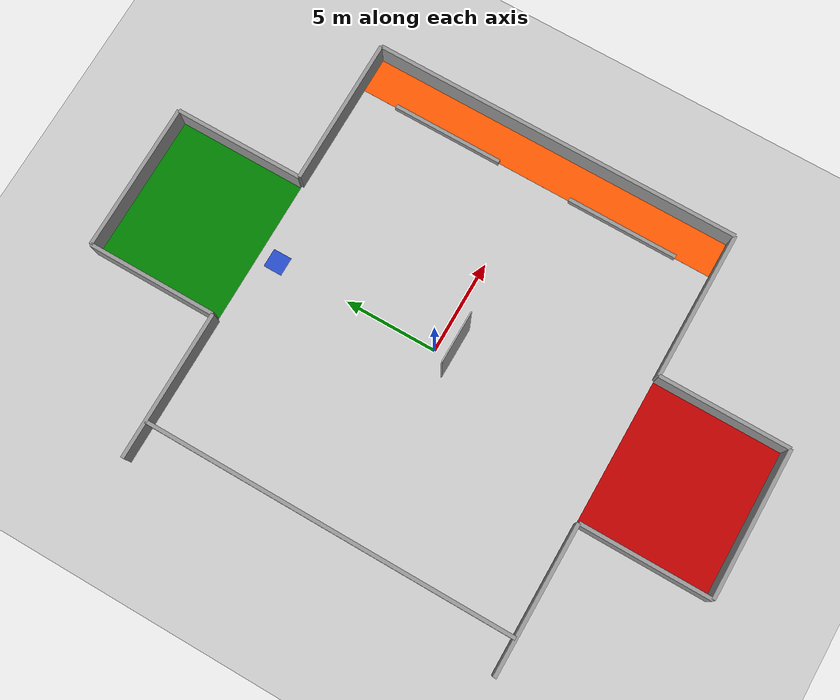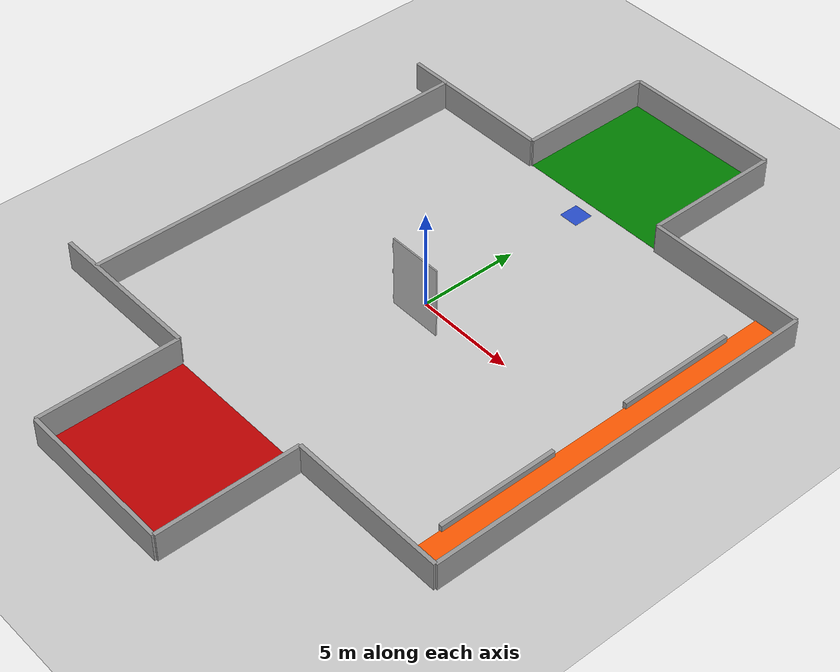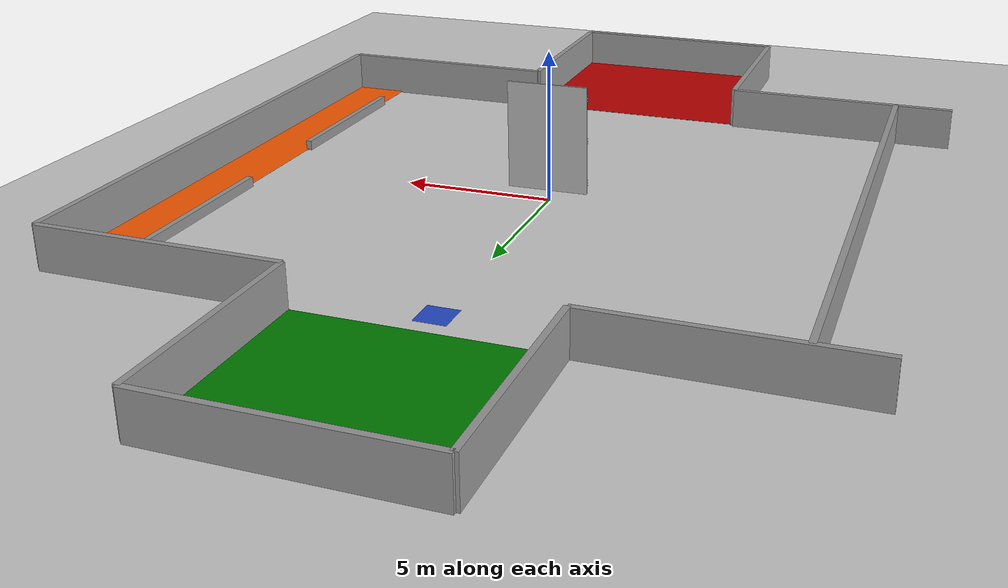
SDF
<?xml version="1.0" ?>
<sdf version="1.4">
  <world name="default">
    <!-- World Camera Settings-->
  <gui>
    <camera name="user_camera">
        <pose frame=''>24.1194 -0.328974 17.8913 0 0.683643 3.13619</pose>
	      <view_controller>orbit</view_controller>
        <projection_type>perspective</projection_type>
    </camera>
  </gui>
    <!--A global light source -->
    <include>
      <uri>model://sun</uri>
      <cast_shadows>0</cast_shadows>
    </include>
    <!-- A ground plane -->
    <include>
      <uri>model://ground_plane</uri>
    </include>
    <!-- Warehouse pallets -->

  <!-- Temporarily delivered pallet -->

    <!-- Our Robot model -->

    <!-- Walls that surround the warehouse -->
      <include>
        <uri>model://warehouse_walls</uri>
      </include>

    <model name='hinged_door'>
      <link name='door'>
        <inertial>
          <mass>41.3256</mass>
          <pose>0 -0.06858 0 0 -0 0</pose>
          <inertia>
            <ixx>14.2053</ixx>
            <ixy>0.0004</ixy>
            <ixz>0</ixz>
            <iyy>17.1997</iyy>
            <iyz>0</iyz>
            <izz>3.0298</izz>
          </inertia>
        </inertial>
        <collision name='collision'>
          <pose>0 -0.06858 0 0 -0 0</pose>
         <geometry>
            <mesh>
              <uri>model://hinged_door/meshes/door.dae</uri>
              <scale>3.0 1.5 1.8</scale>
            </mesh>
          </geometry>
          <max_contacts>10</max_contacts>
          <surface>
            <contact>
              <ode/>
            </contact>
            <bounce/>
            <friction>
              <torsional>
                <ode/>
              </torsional>
              <ode/>
            </friction>
          </surface>
        </collision>
        <visual name='visual'>
          <pose>0 -0.06858 0 0 -0 0</pose>
          <geometry>
            <mesh>
              <uri>model://hinged_door/meshes/door.dae</uri>
              <scale>3.0 1.5 1.8</scale>
            </mesh>
          </geometry>
        </visual>
        <self_collide>0</self_collide>
        <enable_wind>0</enable_wind>
        <kinematic>1</kinematic>
      </link>
      <pose>-1.0 -1.007284 0.000770 -0.000071 0.007538 -0.001876</pose>
    </model>
          <model name='destination_1'>
          <link name='link'>
        <inertial>
          <mass>0.1</mass>
          <inertia>
            <ixx>0.166667</ixx>
            <ixy>0</ixy>
            <ixz>0</ixz>
            <iyy>0.166667</iyy>
            <iyz>0</iyz>
            <izz>0.166667</izz>
          </inertia>
          <pose frame=''>0 0 0 0 -0 0</pose>
        </inertial>
        <self_collide>0</self_collide>
        <enable_wind>0</enable_wind>
        <kinematic>0</kinematic>
        <pose frame=''>0 0 0 0 -0 0</pose>
        <gravity>1</gravity>
        <visual name='visual'>
          <geometry>
            <box>
              <size>1.0 1.0 0.001</size>
            </box>
          </geometry>
      <material>
            <script>
              <name>Gazebo/Blue</name>
              <uri>file://media/materials/scripts/gazebo.material</uri>
            </script>
            <shader type='vertex'>
              <normal_map>__default__</normal_map>
            </shader>
          </material>
          <pose frame=''>0 0 0 0 -0 0</pose>
          <transparency>0</transparency>
          <cast_shadows>1</cast_shadows>
        </visual>
        <collision name='collision'>
          <laser_retro>0</laser_retro>
          <max_contacts>10</max_contacts>
          <pose frame=''>0 0 0 0 -0 0</pose>
          <geometry>
            <box>
              <size>1.0 1.0 0.0</size>
            </box>
          </geometry>
          <surface>
            <friction>
              <ode>
                <mu>0.998000</mu>
                <mu2>0.998000</mu2>
                <fdir1>0.000000 0.000000 0.000000</fdir1>
                <slip1>0.000000</slip1>
                <slip2>0.000000</slip2>
              </ode>
            </friction>
            <bounce>
              <restitution_coefficient>0.000000</restitution_coefficient>
              <threshold>100000.000000</threshold>
            </bounce>
            <contact>
              <ode>
                <soft_cfm>0.000000</soft_cfm>
                <soft_erp>0.200000</soft_erp>
                <kp>100000.000000</kp>
                <kd>1.000000</kd>
                <max_vel>100.000000</max_vel>
                <min_depth>0.001000</min_depth>
              </ode>
            </contact>
          </surface>
        </collision>
      </link>
      <static>1</static>
      <allow_auto_disable>1</allow_auto_disable>
          <pose>0.0 9.0 0.0 0 -0 0</pose>
    </model>s

  </world>
</sdf>

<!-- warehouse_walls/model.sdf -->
<sdf version="1.5">
  <model name="warehouse_walls">
    <static>true</static>

<!-- Wall 1 -->
    <link name="wall1_link">
      <name>wall1_link</name>
      <pose>-10 0 0 0 0 1.57</pose>
      <collision name="collision">
        <geometry>
          <box>
            <size>20 0.2 2.8</size>
          </box>
        </geometry>
      </collision>
      <visual name="wall1_visual">
        <cast_shadows>false</cast_shadows>
        <geometry>
          <box>
            <size>20 0.2 2.8</size>
          </box>
        </geometry>
        <material>
          <script>
            <uri>model://grey_wall/materials/scripts</uri>
            <uri>model://grey_wall/materials/textures</uri>
            <name>vrc/grey_wall</name>
          </script>
        </material>
      </visual>
    </link>

<!-- Wall 2 -->
    <link name="wall2_link2">
      <name>wall2_link2</name>
      <pose>8 -10 0 0 0 0</pose>
      <collision name="wall2_collision2">
        <geometry>
          <box>
            <size>8 0.2 2.8</size>
          </box>
        </geometry>
      </collision>
      <visual name="wall2_visual2">
        <cast_shadows>false</cast_shadows>
        <geometry>
          <box>
            <size>8 0.2 2.8</size>
          </box>
        </geometry>
        <material>
          <script>
            <uri>model://grey_wall/materials/scripts</uri>
            <uri>model://grey_wall/materials/textures</uri>
            <name>vrc/grey_wall</name>
          </script>
        </material>
      </visual>
    </link>

    <link name="wall2_link3">
      <name>wall2_link3</name>
      <pose>4 -13.5 0 0 0 1.57</pose>
      <collision name="wall2_collision3">
        <geometry>
          <box>
            <size>7 0.2 2.8</size>
          </box>
        </geometry>
      </collision>
      <visual name="wall2_visual3">
        <cast_shadows>false</cast_shadows>
        <geometry>
          <box>
            <size>7 0.2 2.8</size>
          </box>
        </geometry>
        <material>
          <script>
            <uri>model://grey_wall/materials/scripts</uri>
            <uri>model://grey_wall/materials/textures</uri>
            <name>vrc/grey_wall</name>
          </script>
        </material>
      </visual>
    </link>

    <link name="wall2_link4">
      <name>wall2_link4</name>
      <pose>0 -17 0 0 0 0</pose>
      <collision name="wall2_collision4">
        <geometry>
          <box>
            <size>8 0.2 2.8</size>
          </box>
        </geometry>
      </collision>
      <visual name="wall2_visual4">
        <cast_shadows>false</cast_shadows>
        <geometry>
          <box>
            <size>8 0.2 2.8</size>
          </box>
        </geometry>
        <material>
          <script>
            <uri>model://grey_wall/materials/scripts</uri>
            <uri>model://grey_wall/materials/textures</uri>
            <name>vrc/grey_wall</name>
          </script>
        </material>
      </visual>
    </link>

    <link name="wall2_link5">
      <name>wall2_link5</name>
      <pose>-4 -13.5 0 0 0 1.57</pose>
      <collision name="wall2_collision5">
        <geometry>
          <box>
            <size>7 0.2 2.8</size>
          </box>
        </geometry>
      </collision>
      <visual name="wall2_visual5">
        <cast_shadows>false</cast_shadows>
        <geometry>
          <box>
            <size>7 0.2 2.8</size>
          </box>
        </geometry>
        <material>
          <script>
            <uri>model://grey_wall/materials/scripts</uri>
            <uri>model://grey_wall/materials/textures</uri>
            <name>vrc/grey_wall</name>
          </script>
        </material>
      </visual>
    </link>

    <link name="wall2_link6">
      <name>wall2_link6</name>
      <pose>-8 -10 0 0 0 0</pose>
      <collision name="wall2_collision6">
        <geometry>
          <box>
            <size>8 0.2 2.8</size>
          </box>
        </geometry>
      </collision>
      <visual name="wall2_visual6">
        <cast_shadows>false</cast_shadows>
        <geometry>
          <box>
            <size>8 0.2 2.8</size>
          </box>
        </geometry>
        <material>
          <script>
            <uri>model://grey_wall/materials/scripts</uri>
            <uri>model://grey_wall/materials/textures</uri>
            <name>vrc/grey_wall</name>
          </script>
        </material>
      </visual>
    </link>

<!--Lets also add Output Area Visual to be green color-->

    <link name="output_area_0">
      <name>output_area_0</name>
      <pose>0 13.5 0 0 0 0</pose>
	  <visual name='visual_output_area_0'>
		<cast_shadows>false</cast_shadows>
		<geometry>
		  <plane>
		    <normal>0 0 1</normal>
		    <size>8 7</size>
		  </plane>
		</geometry>
	  <material>
	    <ambient>0 0.5 0 1</ambient>
	    <diffuse>0 0.5 0 1</diffuse>
	    <specular>0 0 0 1</specular>
	    <emissive>0 0 0 0</emissive>
	  </material>
	  </visual>
    </link>

<!-- Wall 3 -->
    <link name="wall3_link2">
      <name>wall3_link2</name>
      <pose>8 10 0 0 0 0</pose>
      <collision name="wall3_collision2">
        <geometry>
          <box>
            <size>8 0.2 2.8</size>
          </box>
        </geometry>
      </collision>
      <visual name="wall3_visual2">
        <cast_shadows>false</cast_shadows>
        <geometry>
          <box>
            <size>8 0.2 2.8</size>
          </box>
        </geometry>
        <material>
          <script>
            <uri>model://grey_wall/materials/scripts</uri>
            <uri>model://grey_wall/materials/textures</uri>
            <name>vrc/grey_wall</name>
          </script>
        </material>
      </visual>
    </link>

    <link name="wall3_link3">
      <name>wall3_link3</name>
      <pose>4 13.5 0 0 0 1.57</pose>
      <collision name="wall3_collision3">
        <geometry>
          <box>
            <size>7 0.2 2.8</size>
          </box>
        </geometry>
      </collision>
      <visual name="wall3_visual3">
        <cast_shadows>false</cast_shadows>
        <geometry>
          <box>
            <size>7 0.2 2.8</size>
          </box>
        </geometry>
        <material>
          <script>
            <uri>model://grey_wall/materials/scripts</uri>
            <uri>model://grey_wall/materials/textures</uri>
            <name>vrc/grey_wall</name>
          </script>
        </material>
      </visual>
    </link>

    <link name="wall3_link4">
      <name>wall3_link4</name>
      <pose>0 17 0 0 0 0</pose>
      <collision name="wall3_collision4">
        <geometry>
          <box>
            <size>8 0.2 2.8</size>
          </box>
        </geometry>
      </collision>
      <visual name="wall3_visual4">
        <cast_shadows>false</cast_shadows>
        <geometry>
          <box>
            <size>8 0.2 2.8</size>
          </box>
        </geometry>
        <material>
          <script>
            <uri>model://grey_wall/materials/scripts</uri>
            <uri>model://grey_wall/materials/textures</uri>
            <name>vrc/grey_wall</name>
          </script>
        </material>
      </visual>
    </link>

    <link name="wall3_link5">
      <name>wall3_link5</name>
      <pose>-4 13.5 0 0 0 1.57</pose>
      <collision name="wall3_collision5">
        <geometry>
          <box>
            <size>7 0.2 2.8</size>
          </box>
        </geometry>
      </collision>
      <visual name="wall3_visual5">
        <cast_shadows>false</cast_shadows>
        <geometry>
          <box>
            <size>7 0.2 2.8</size>
          </box>
        </geometry>
        <material>
          <script>
            <uri>model://grey_wall/materials/scripts</uri>
            <uri>model://grey_wall/materials/textures</uri>
            <name>vrc/grey_wall</name>
          </script>
        </material>
      </visual>
    </link>

    <link name="wall3_link6">
      <name>wall3_link6</name>
      <pose>-8 10 0 0 0 0</pose>
      <collision name="wall3_collision6">
        <geometry>
          <box>
            <size>8 0.2 2.8</size>
          </box>
        </geometry>
      </collision>
      <visual name="wall3_visual6">
        <cast_shadows>false</cast_shadows>
        <geometry>
          <box>
            <size>8 0.2 2.8</size>
          </box>
        </geometry>
        <material>
          <script>
            <uri>model://grey_wall/materials/scripts</uri>
            <uri>model://grey_wall/materials/textures</uri>
            <name>vrc/grey_wall</name>
          </script>
        </material>
      </visual>
    </link>

<!--Lets also add Input Area Visual to be Red color-->

    <link name="output_area_1">
      <name>output_area_1</name>
      <pose>0 -13.5 0 0 0 0</pose>
	  <visual name='visual_output_area_1'>
		<cast_shadows>false</cast_shadows>
		<geometry>
		  <plane>
		    <normal>0 0 1</normal>
		    <size>8 7</size>
		  </plane>
		</geometry>
	  <material>
	    <ambient>0.75 0 0 1</ambient>
	    <diffuse>0.75 0 0 1</diffuse>
	    <specular>0 0 0 1</specular>
	    <emissive>0 0 0 0</emissive>
	  </material>
	  </visual>
    </link>

<!-- Wall 4 -->
    <link name="wall4_link">
      <name>wall4_link4</name>
      <pose>12 0 0 0 0 1.57</pose>
      <collision name="wall4_collision">
        <geometry>
          <box>
            <size>20 0.2 2.8</size>
          </box>
        </geometry>
      </collision>
      <visual name="wall4_visual">
        <cast_shadows>false</cast_shadows>
        <geometry>
          <box>
            <size>20 0.2 2.8</size>
          </box>
        </geometry>
        <material>
          <script>
            <uri>model://grey_wall/materials/scripts</uri>
            <uri>model://grey_wall/materials/textures</uri>
            <name>vrc/grey_wall</name>
          </script>
        </material>
      </visual>
    </link>

<!-- Resting Area Walls -->
    <link name="wall5_link1">
      <name>wall5_link1</name>
      <pose>10 -5 0 0 0 1.57</pose>
      <collision name="wall5_collision1">
        <geometry>
          <box>
            <size>6 0.2 0.6</size>
          </box>
        </geometry>
      </collision>
      <visual name="wall5_visual1">
        <cast_shadows>false</cast_shadows>
        <geometry>
          <box>
            <size>6 0.2 0.6</size>
          </box>
        </geometry>
        <material>
          <script>
            <uri>model://grey_wall/materials/scripts</uri>
            <uri>model://grey_wall/materials/textures</uri>
            <name>vrc/grey_wall</name>
          </script>
        </material>
      </visual>
    </link>

    <link name="wall5_link2">
      <name>wall5_link2</name>
      <pose>10 5 0 0 0 1.57</pose>
      <collision name="wall5_collision2">
        <geometry>
          <box>
            <size>6 0.2 0.6</size>
          </box>
        </geometry>
      </collision>
      <visual name="wall5_visual2">
        <cast_shadows>false</cast_shadows>
        <geometry>
          <box>
            <size>6 0.2 0.6</size>
          </box>
        </geometry>
        <material>
          <script>
            <uri>model://grey_wall/materials/scripts</uri>
            <uri>model://grey_wall/materials/textures</uri>
            <name>vrc/grey_wall</name>
          </script>
        </material>
      </visual>
    </link>

<!--Lets also add Resting Area Visual to be a darker orange color-->

    <link name="resting_area">
      <name>resting_area_2</name>
      <pose>11 0 0 0 0 1.57</pose>
	  <visual name='visual_resting_area'>
		<cast_shadows>false</cast_shadows>
		<geometry>
		  <plane>
		    <normal>0 0 1</normal>
		    <size>20 2</size>
		  </plane>
		</geometry>
	  <material>
	    <ambient>1 0.35 0 1</ambient>
	    <diffuse>1 0.35 0 1</diffuse>
	    <specular>0 0 0 1</specular>
	    <emissive>0 0 0 0</emissive>
	  </material>
	  </visual>
    </link>

  </model>
</sdf>
